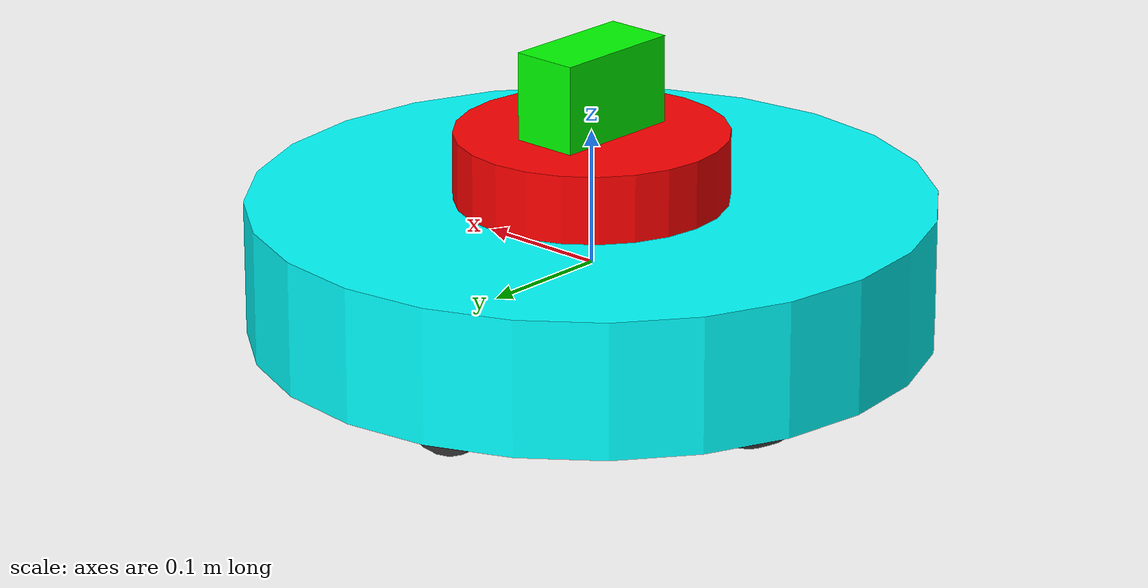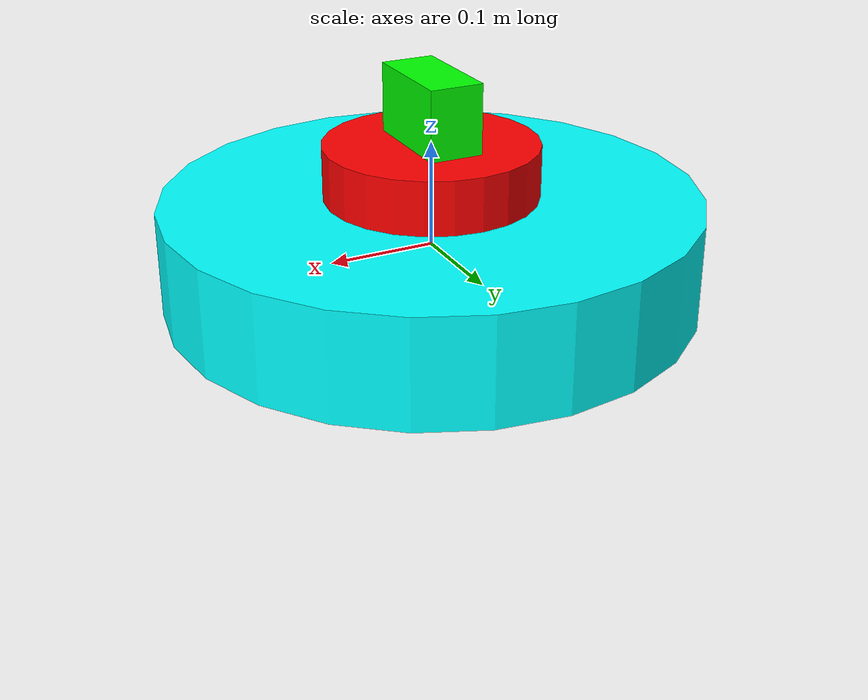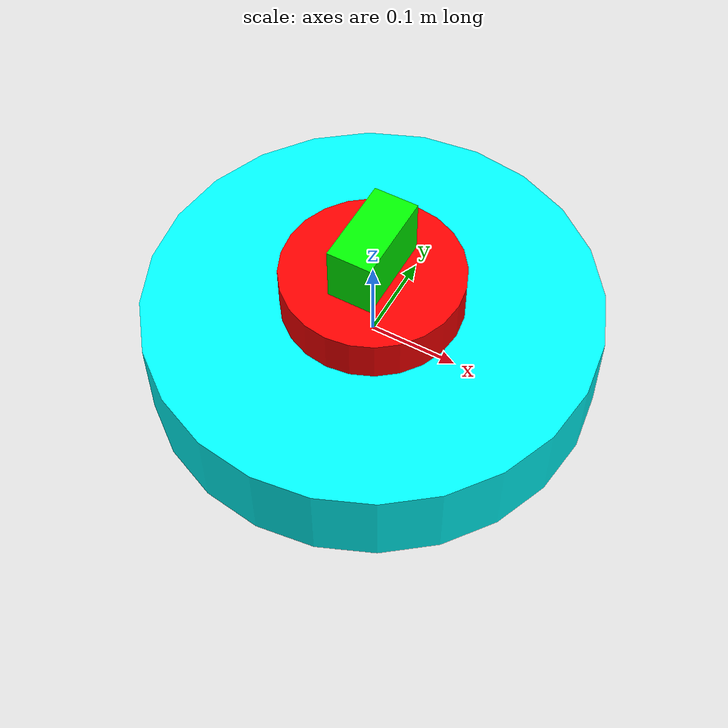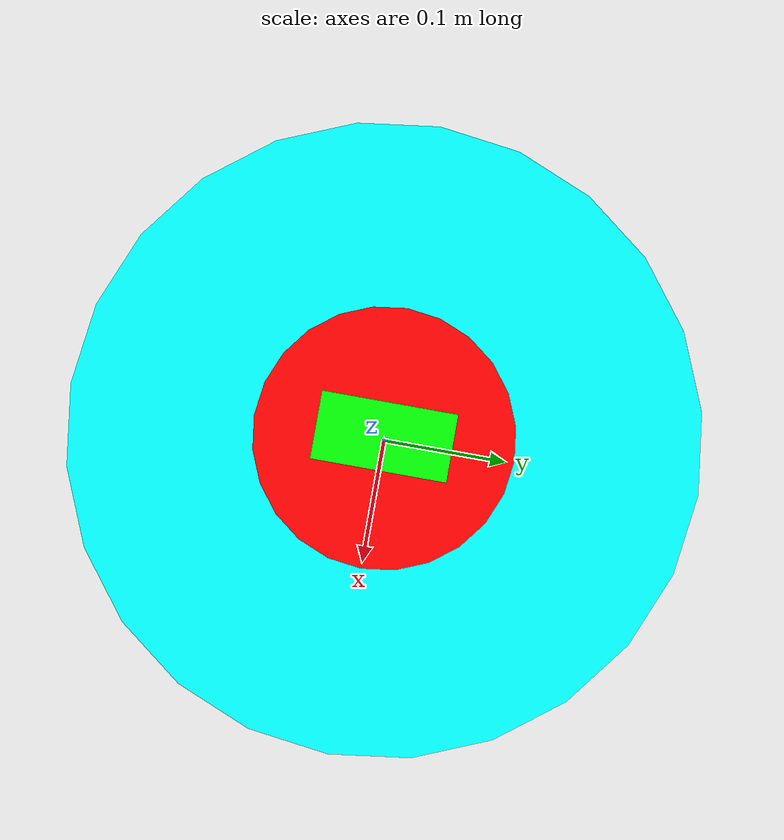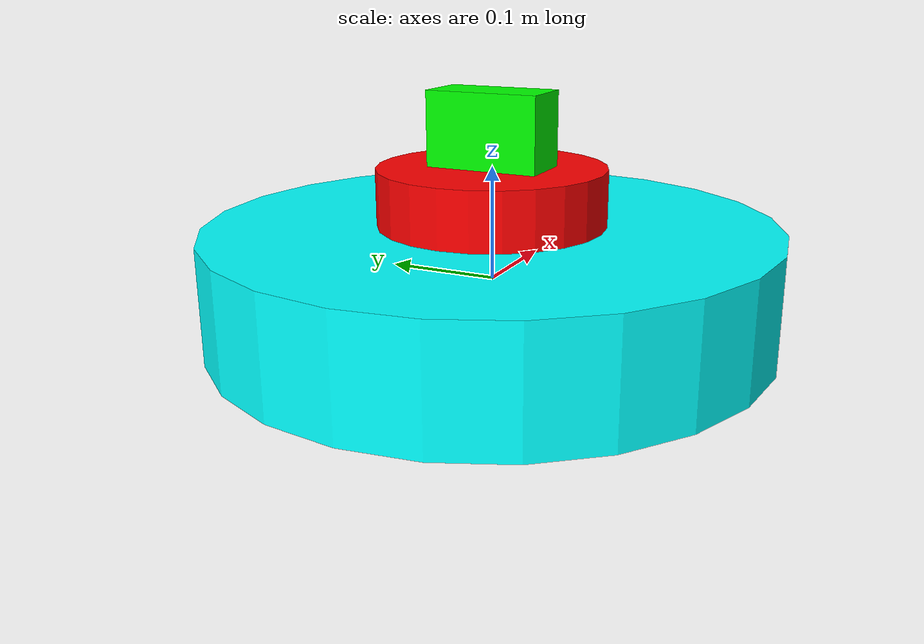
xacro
<?xml version="1.0"?>
<robot xmlns:xacro="http://wiki.ros.org/xacro" name="robot">

  <xacro:include filename="$(find bot_description)/models/core.xacro"/>
  <xacro:include filename="$(find bot_control)/models/ros2_control.xacro"/>

  <!-- parameters -->

  <!-- possible 'mode' values: gz, hw -->
  <!-- hardware to be added later -->
  <xacro:arg name="mode" default="gz"/>

  <xacro:robot_description/>
  <xacro:robot_ros2_control_description mode="$(arg mode)"/>

</robot>

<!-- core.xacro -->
<robot xmlns:xacro="http://wiki.ros.org/xacro">

  <xacro:include filename="$(find bot_description)/models/include/camera.xacro"/>
  <xacro:include filename="$(find bot_description)/models/include/caster.xacro"/>
  <xacro:include filename="$(find bot_description)/models/include/chassis.xacro"/>
  <xacro:include filename="$(find bot_description)/models/include/imu.xacro"/>
  <xacro:include filename="$(find bot_description)/models/include/lidar.xacro"/>
  <xacro:include filename="$(find bot_description)/models/include/wheel.xacro"/>

  <xacro:macro name="robot_description">

    <xacro:chassis_description name="base_link" mass="10"/>

    <xacro:lidar_description name="top_lidar" parent="base_link">
      <gz_frame_id>top_lidar</gz_frame_id>
      <origin xyz="0 0 0.075" rpy="0 0 0"/>
    </xacro:lidar_description>

    <xacro:camera_description name="top_camera" parent="base_link">
      <gz_frame_id>top_camera</gz_frame_id>
      <origin xyz="0 0 0.115" rpy="0 0 0"/>
    </xacro:camera_description>

    <xacro:imu_description name="base_imu" parent="base_link">
      <origin xyz="0 0 -0.055" rpy="0 0 0"/>
    </xacro:imu_description>

    <xacro:wheel_description name="left_wheel" parent="base_link" mass="1">
      <origin xyz="0 0.15 -0.05" rpy="-1.571 0 0"/>
      <axis xyz="0 0 1"/>
    </xacro:wheel_description>

    <xacro:wheel_description name="right_wheel" parent="base_link" mass="1">
      <origin xyz="0 -0.15 -0.05" rpy="1.571 0 0"/>
      <axis xyz="0 0 -1"/>
    </xacro:wheel_description>

    <xacro:caster_description name="front_caster" parent="base_link" mass="1">
      <origin xyz="0.15 0 -0.05"/>
    </xacro:caster_description>

    <xacro:caster_description name="rear_caster" parent="base_link" mass="1">
      <origin xyz="-0.15 0 -0.05"/>
    </xacro:caster_description>

  </xacro:macro>

</robot>

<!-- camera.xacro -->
<robot xmlns:xacro="http://www.ros.org/wiki/xacro">

  <xacro:macro name="camera_description" params="name parent *gz_frame_id *origin">

    <link name="${name}">
      <visual>
        <origin xyz="0 0 0" rpy="0 0 0"/>
        <geometry>
          <box size="0.05 0.1 0.1"/>
        </geometry>
        <material name="green">
          <color rgba="0.0 1.0 0.0 1.0"/>
        </material>
      </visual>
      <collision>
        <origin xyz="0 0 0" rpy="0 0 0"/>
        <geometry>
          <box size="0.05 0.1 0.1"/>
        </geometry>
      </collision>
      <inertial>
        <origin xyz="0 0 0" rpy="0 0 0"/>
        <mass value="0.01"/>
        <inertia ixx="0.0000167" ixy="0" ixz="0" iyy="0.0000104167" iyz="0" izz="0.0000104167"/>
      </inertial>
    </link>

    <joint name="${name}_joint" type="fixed">
      <parent link="${parent}"/>
      <child link="${name}"/>
      <xacro:insert_block name="origin"/>
    </joint>

    <link name="${name}_optical"/>

    <joint name="${name}_optical_joint" type="fixed">
      <parent link="${name}"/>
      <child link="${name}_optical"/>
      <origin xyz="0 0 0" rpy="${-pi/2} 0 ${-pi/2}"/>
    </joint>

    <gazebo reference="${name}">
      <sensor name="${name}" type="camera">
        <pose> 0 0 0 0 0 0 </pose>
        <visualize>true</visualize>
        <update_rate>10</update_rate>
        <camera>
          <camera_info_topic>${name}/camera_info</camera_info_topic>
          <horizontal_fov>1.089</horizontal_fov>
          <image>
            <format>R8G8B8</format>
            <width>640</width>
            <height>480</height>
          </image>
          <clip>
            <near>0.05</near>
            <far>8.0</far>
          </clip>
        </camera>
        <topic>${name}/image_raw</topic>
        <xacro:insert_block name="gz_frame_id"/>
      </sensor>
    </gazebo>

  </xacro:macro>

</robot>

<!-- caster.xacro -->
<robot xmlns:xacro="http://wiki.ros.org/xacro">

  <xacro:macro name="caster_description" params="name parent mass *origin">

    <link name="${name}">
      <visual>
        <origin xyz="0 0 0" rpy="0 0 0"/>
        <geometry>
          <sphere radius="0.05"/>
        </geometry>
        <material name="black">
          <color rgba="0.2 0.2 0.2 1"/>
        </material>
      </visual>
      <collision>
        <origin xyz="0 0 0" rpy="0 0 0"/>
        <geometry>
          <sphere radius="0.05"/>
        </geometry>
      </collision>
      <inertial>
        <mass value="${mass}"/>
        <origin xyz="0 0 0" rpy="0 0 0"/>
        <inertia
          ixx="${0.4 * mass * 0.05 * 0.05}"
          ixy="0.0"
          ixz="0.0"
          iyy="${0.4 * mass * 0.05 * 0.05}"
          iyz="0.0"
          izz="${0.4 * mass * 0.05 * 0.05}"
        />
      </inertial>
    </link>

    <gazebo reference="${name}">
	    <selfCollide>false</selfCollide>
      <mu1 value="0.001"/>
      <mu2 value="0.001"/>
    </gazebo>

    <joint name="${name}_joint" type="fixed">
      <parent link="${parent}"/>
      <child link="${name}"/>
      <xacro:insert_block name="origin"/>
    </joint>

  </xacro:macro>

</robot>

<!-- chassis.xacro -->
<robot xmlns:xacro="http://wiki.ros.org/xacro">

  <xacro:macro name="chassis_description" params="name mass">

    <link name="${name}">
      <visual>
        <origin xyz="0 0 0" rpy="0 0 0"/>
        <geometry>
          <cylinder radius="0.25" length="0.1"/>
        </geometry>
        <material name="cyan">
          <color rgba="0 1 1 1"/>
        </material>
      </visual>
      <collision>
        <origin xyz="0 0 0" rpy="0 0 0"/>
        <geometry>
          <cylinder radius="0.25" length="0.1"/>
        </geometry>
      </collision>
      <inertial>
        <mass value="${mass}"/>
        <origin xyz="0 0 0" rpy="0 0 0"/>
        <inertia ixx="1.0" ixy="0.0" ixz="0.0" iyy="1.0" iyz="0.0" izz="1.0"/>
      </inertial>
    </link>

    <gazebo reference="${name}">
	    <selfCollide>false</selfCollide>
      <mu1 value="0.05"/>
      <mu2 value="0.05"/>
    </gazebo>

  </xacro:macro>

</robot>

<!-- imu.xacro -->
<robot xmlns:xacro="http://wiki.ros.org/xacro">

  <xacro:macro name="imu_description" params="name parent *origin">

    <link name="${name}">
      <visual>
        <origin xyz="0 0 0" rpy="0 0 0"/>
        <geometry>
          <box size="0.01 0.01 0.01"/>
        </geometry>
        <material name="brown">
          <color rgba="1 1 0 1"/>
        </material>
      </visual>
      <collision>
        <origin xyz="0 0 0" rpy="0 0 0"/>
        <geometry>
          <box size="0.01 0.01 0.01"/>
        </geometry>
      </collision>
      <inertial>
        <origin xyz="0 0 0" rpy="0 0 0"/>
        <mass value="0.01"/>
        <inertia ixx="0.00001" ixy="0" ixz="0" iyy="0.00001" iyz="0" izz="0.00002"/>
      </inertial>
    </link>

    <gazebo reference="${name}">
      <sensor name="${name}" type="imu">
        <always_on>true</always_on>
        <update_rate>200</update_rate>
        <topic>${name}</topic>
        <imu>
          <angular_velocity>
            <x>
              <noise type="gaussian">
                <mean>0.0</mean>
                <stddev>2e-4</stddev>
              </noise>
            </x>
            <y>
              <noise type="gaussian">
                <mean>0.0</mean>
                <stddev>2e-4</stddev>
              </noise>
            </y>
            <z>
              <noise type="gaussian">
                <mean>0.0</mean>
                <stddev>2e-4</stddev>
              </noise>
            </z>
          </angular_velocity>
          <linear_acceleration>
            <x>
              <noise type="gaussian">
                <mean>0.0</mean>
                <stddev>1.7e-2</stddev>
              </noise>
            </x>
            <y>
              <noise type="gaussian">
                <mean>0.0</mean>
                <stddev>1.7e-2</stddev>
              </noise>
            </y>
            <z>
              <noise type="gaussian">
                <mean>0.0</mean>
                <stddev>1.7e-2</stddev>
              </noise>
            </z>
          </linear_acceleration>
        </imu>
      </sensor>
    </gazebo>

    <joint name="${name}_joint" type="fixed">
      <parent link="${parent}"/>
      <child link="${name}"/>
      <xacro:insert_block name="origin"/>
    </joint>

  </xacro:macro>

</robot>

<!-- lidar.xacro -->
<robot xmlns:xacro="http://wiki.ros.org/xacro">

  <xacro:macro name="lidar_description" params="name parent *gz_frame_id *origin">

    <link name="${name}">
      <visual>
        <origin xyz="0 0 0" rpy="0 0 0"/>
        <geometry>
          <cylinder radius="0.1" length="0.05"/>
        </geometry>
        <material name="red">
          <color rgba="1 0 0 1"/>
        </material>
      </visual>
      <collision>
        <origin xyz="0 0 0" rpy="0 0 0"/>
        <geometry>
          <cylinder radius="0.1" length="0.05"/>
        </geometry>
      </collision>
      <inertial>
        <origin xyz="0 0 0" rpy="0 0 0"/>
        <mass value="0.01"/>
        <inertia ixx="0.000025" ixy="0" ixz="0" iyy="0.000025" iyz="0" izz="0.00005"/>
      </inertial>
    </link>

    <gazebo reference="${name}">
	    <selfCollide>false</selfCollide>
      <mu1 value="0.05"/>
      <mu2 value="0.05"/>
      <sensor name="${name}_scan" type="gpu_lidar">
        <pose> 0 0 0 0 0 0 </pose>
        <visualize>true</visualize>
        <update_rate>10</update_rate>
        <lidar>
          <scan>
            <horizontal>
              <samples>360</samples>
              <min_angle>-3.14</min_angle>
              <max_angle>3.14</max_angle>
            </horizontal>
          </scan>
          <range>
            <min>0.3</min>
            <max>8</max>
          </range>
        </lidar>
        <topic>${name}_scan</topic>
        <xacro:insert_block name="gz_frame_id"/>
      </sensor>
    </gazebo>

    <joint name="${name}_joint" type="fixed">
      <parent link="${parent}"/>
      <child link="${name}"/>
      <xacro:insert_block name="origin"/>
    </joint>

  </xacro:macro>

</robot>

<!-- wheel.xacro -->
<robot xmlns:xacro="http://wiki.ros.org/xacro">

  <xacro:macro name="wheel_description" params="name parent mass *origin *axis">

    <link name="${name}">
      <visual>
        <origin xyz="0 0 0" rpy="0 0 0"/>
        <geometry>
          <cylinder radius="0.05" length="0.025"/>
        </geometry>
        <material name="black">
          <color rgba="0.2 0.2 0.2 1"/>
        </material>
      </visual>
      <collision>
        <origin xyz="0 0 0" rpy="0 0 0"/>
        <geometry>
          <cylinder radius="0.05" length="0.025"/>
        </geometry>
      </collision>
      <inertial>
        <mass value="${mass}"/>
        <origin xyz="0 0 0" rpy="0 0 0"/>
        <inertia
          ixx="${0.25 * mass * 0.05 * 0.05}"
          ixy="0.0"
          ixz="0.0"
          iyy="${0.25 * mass * 0.05 * 0.05}"
          iyz="0.0"
          izz="${0.5 * mass * 0.05 * 0.05}"
        />
      </inertial>
    </link>

    <gazebo reference="${name}">
	    <selfCollide>false</selfCollide>
      <mu1 value="0.2"/>
      <mu2 value="0.2"/>
    </gazebo>

    <joint name="${name}_joint" type="continuous">
      <parent link="${parent}"/>
      <child link="${name}"/>
      <xacro:insert_block name="origin"/>
      <xacro:insert_block name="axis"/>
      <limit effort="10" velocity="10"/>
    </joint>

  </xacro:macro>

</robot>

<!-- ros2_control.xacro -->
<robot xmlns:xacro="http://www.ros.org/wiki/xacro">

  <xacro:macro name="robot_ros2_control_description" params="mode">

    <xacro:property name="mode" value="$(arg mode)"/>

    <xacro:if value="${mode == 'gz'}">

      <gazebo>
        <plugin filename="gz_ros2_control-system" name="gz_ros2_control::GazeboSimROS2ControlPlugin">
          <parameters>$(find bot_control)/config/controllers.yaml</parameters>
        </plugin>
        <plugin filename="gz-sim-sensors-system" name="gz::sim::systems::Sensors">
          <render_engine>ogre2</render_engine>
        </plugin>
      </gazebo>

      <ros2_control name="robot_ros2_control" type="system">

        <hardware>
          <plugin>gz_ros2_control/GazeboSimSystem</plugin>
        </hardware>

        <joint name="left_wheel_joint">
          <command_interface name="velocity">
            <param name="min">-100.0</param>
            <param name="max">100.0</param>
          </command_interface>
          <state_interface name="position">
            <param name="initial_value">0.0</param>
          </state_interface>
          <state_interface name="velocity">
            <param name="initial_value">0.0</param>
          </state_interface>
        </joint>

        <joint name="right_wheel_joint">
          <command_interface name="velocity">
            <param name="min">-100.0</param>
            <param name="max">100.0</param>
          </command_interface>
          <state_interface name="position">
            <param name="initial_value">0.0</param>
          </state_interface>
          <state_interface name="velocity">
            <param name="initial_value">0.0</param>
          </state_interface>
        </joint>

      </ros2_control>

    </xacro:if>

  </xacro:macro>

</robot>
